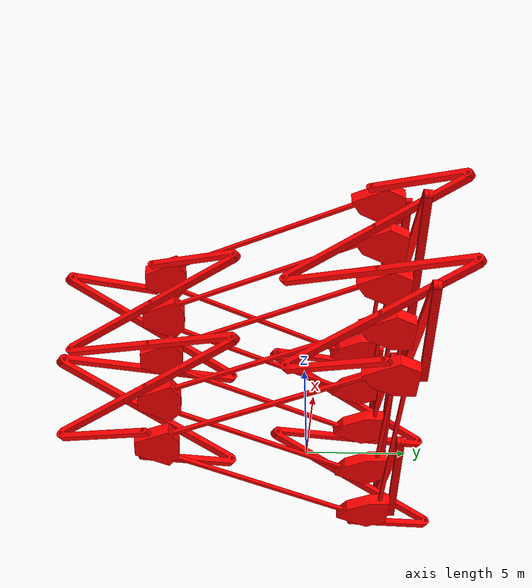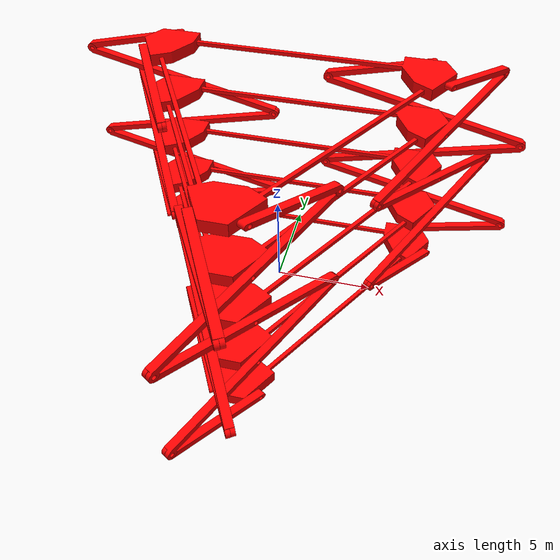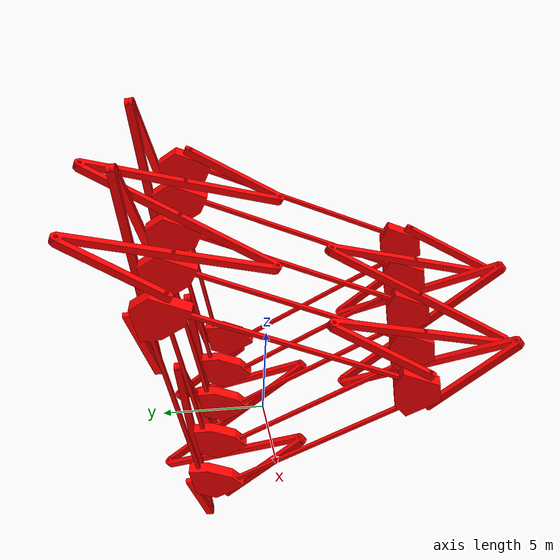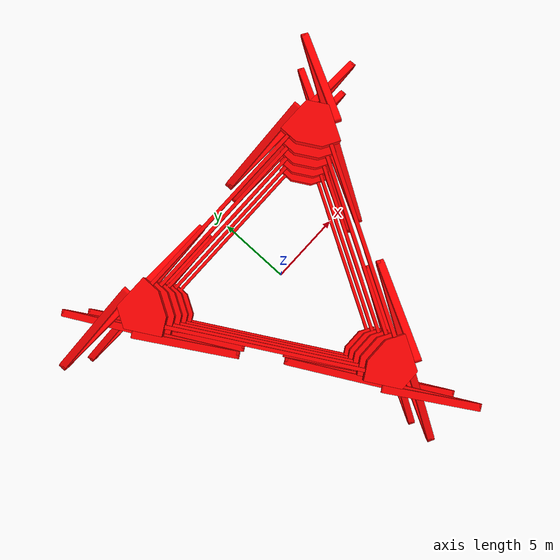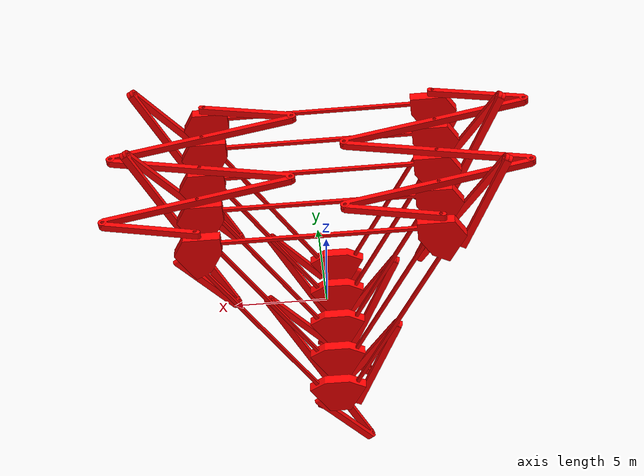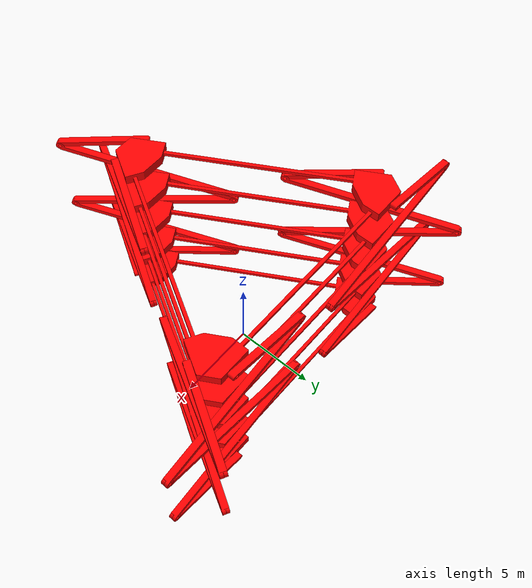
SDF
<?xml version='1.0' encoding='utf-8'?>
<sdf version="1.7">
	<model name="robot">
		<link name="link11">
			<pose>6.55 5.079 3.0175999735764676 3.141592653589793 0.23561944901923448 0</pose>
			<collision name="link11colli">
				<geometry>
					<mesh>
						<uri>meshes/cl1.STL</uri>
						<scale>0.1 0.1 0.1</scale>
					</mesh>
				</geometry>
			</collision>
			<visual name="link11visu">
				<geometry>
					<mesh>
						<uri>meshes/cl1.STL</uri>
						<scale>0.1 0.1 0.1</scale>
					</mesh>
				</geometry>
				<material>
					<ambient>1 0 0 1</ambient>
					<diffuse>1 0 0 1</diffuse>
					<specular>1 0 0 1</specular>
				</material>
			</visual>
		</link>
		<link name="link12">
			<pose>6.55 5.079 5.735199947152935 0 -0.23561944901923448 0</pose>
			<collision name="link12colli">
				<geometry>
					<mesh>
						<uri>meshes/cl1.STL</uri>
						<scale>0.1 0.1 0.1</scale>
					</mesh>
				</geometry>
			</collision>
			<visual name="link12visu">
				<geometry>
					<mesh>
						<uri>meshes/cl1.STL</uri>
						<scale>0.1 0.1 0.1</scale>
					</mesh>
				</geometry>
				<material>
					<ambient>1 0 0 1</ambient>
					<diffuse>1 0 0 1</diffuse>
					<specular>1 0 0 1</specular>
				</material>
			</visual>
		</link>
		<link name="link13">
			<pose>6.55 5.079 8.452799920729404 3.141592653589793 0.23561944901923448 0</pose>
			<collision name="link13colli">
				<geometry>
					<mesh>
						<uri>meshes/cl1.STL</uri>
						<scale>0.1 0.1 0.1</scale>
					</mesh>
				</geometry>
			</collision>
			<visual name="link13visu">
				<geometry>
					<mesh>
						<uri>meshes/cl1.STL</uri>
						<scale>0.1 0.1 0.1</scale>
					</mesh>
				</geometry>
				<material>
					<ambient>1 0 0 1</ambient>
					<diffuse>1 0 0 1</diffuse>
					<specular>1 0 0 1</specular>
				</material>
			</visual>
		</link>
		<link name="link1_down">
			<pose>6.55 5.079 0.3 0 2.9059732045705586 0</pose>
			<collision name="link1_downcolli">
				<geometry>
					<mesh>
						<uri>meshes/chengg_down.STL</uri>
						<scale>0.1 0.1 0.1</scale>
					</mesh>
				</geometry>
			</collision>
			<visual name="link1_downvisu">
				<geometry>
					<mesh>
						<uri>meshes/chengg_down.STL</uri>
						<scale>0.1 0.1 0.1</scale>
					</mesh>
				</geometry>
				<material>
					<ambient>1 0 0 1</ambient>
					<diffuse>1 0 0 1</diffuse>
					<specular>1 0 0 1</specular>
				</material>
			</visual>
		</link>
		<link name="link1_up">
			<pose>6.55 5.079 11.170399894305872 0 2.9059732045705586 0</pose>
			<collision name="link1_upcolli">
				<geometry>
					<mesh>
						<uri>meshes/chengg_up.STL</uri>
						<scale>0.1 0.1 0.1</scale>
					</mesh>
				</geometry>
			</collision>
			<visual name="link1_upvisu">
				<geometry>
					<mesh>
						<uri>meshes/chengg_up.STL</uri>
						<scale>0.1 0.1 0.1</scale>
					</mesh>
				</geometry>
				<material>
					<ambient>1 0 0 1</ambient>
					<diffuse>1 0 0 1</diffuse>
					<specular>1 0 0 1</specular>
				</material>
			</visual>
		</link>
		<link name="link21">
			<pose>-7.6735430258211625 3.132966394788075 3.0175999735764676 3.141592653589793 0.23561944901923448 2.0943951023931953</pose>
			<collision name="link21colli">
				<geometry>
					<mesh>
						<uri>meshes/cl1.STL</uri>
						<scale>0.1 0.1 0.1</scale>
					</mesh>
				</geometry>
			</collision>
			<visual name="link21visu">
				<geometry>
					<mesh>
						<uri>meshes/cl1.STL</uri>
						<scale>0.1 0.1 0.1</scale>
					</mesh>
				</geometry>
				<material>
					<ambient>1 0 0 1</ambient>
					<diffuse>1 0 0 1</diffuse>
					<specular>1 0 0 1</specular>
				</material>
			</visual>
		</link>
		<link name="link22">
			<pose>-7.6735430258211625 3.132966394788075 5.735199947152935 0 -0.23561944901923448 2.0943951023931953</pose>
			<collision name="link22colli">
				<geometry>
					<mesh>
						<uri>meshes/cl1.STL</uri>
						<scale>0.1 0.1 0.1</scale>
					</mesh>
				</geometry>
			</collision>
			<visual name="link22visu">
				<geometry>
					<mesh>
						<uri>meshes/cl1.STL</uri>
						<scale>0.1 0.1 0.1</scale>
					</mesh>
				</geometry>
				<material>
					<ambient>1 0 0 1</ambient>
					<diffuse>1 0 0 1</diffuse>
					<specular>1 0 0 1</specular>
				</material>
			</visual>
		</link>
		<link name="link23">
			<pose>-7.6735430258211625 3.132966394788075 8.452799920729404 3.141592653589793 0.23561944901923448 2.0943951023931953</pose>
			<collision name="link23colli">
				<geometry>
					<mesh>
						<uri>meshes/cl1.STL</uri>
						<scale>0.1 0.1 0.1</scale>
					</mesh>
				</geometry>
			</collision>
			<visual name="link23visu">
				<geometry>
					<mesh>
						<uri>meshes/cl1.STL</uri>
						<scale>0.1 0.1 0.1</scale>
					</mesh>
				</geometry>
				<material>
					<ambient>1 0 0 1</ambient>
					<diffuse>1 0 0 1</diffuse>
					<specular>1 0 0 1</specular>
				</material>
			</visual>
		</link>
		<link name="link2_down">
			<pose>-7.6735430258211625 3.132966394788075 0.3 0 2.9059732045705586 2.0943951023931953</pose>
			<collision name="link2_downcolli">
				<geometry>
					<mesh>
						<uri>meshes/chengg_down.STL</uri>
						<scale>0.1 0.1 0.1</scale>
					</mesh>
				</geometry>
			</collision>
			<visual name="link2_downvisu">
				<geometry>
					<mesh>
						<uri>meshes/chengg_down.STL</uri>
						<scale>0.1 0.1 0.1</scale>
					</mesh>
				</geometry>
				<material>
					<ambient>1 0 0 1</ambient>
					<diffuse>1 0 0 1</diffuse>
					<specular>1 0 0 1</specular>
				</material>
			</visual>
		</link>
		<link name="link2_up">
			<pose>-7.6735430258211625 3.132966394788075 11.170399894305872 0 2.9059732045705586 2.0943951023931953</pose>
			<collision name="link2_upcolli">
				<geometry>
					<mesh>
						<uri>meshes/chengg_up.STL</uri>
						<scale>0.1 0.1 0.1</scale>
					</mesh>
				</geometry>
			</collision>
			<visual name="link2_upvisu">
				<geometry>
					<mesh>
						<uri>meshes/chengg_up.STL</uri>
						<scale>0.1 0.1 0.1</scale>
					</mesh>
				</geometry>
				<material>
					<ambient>1 0 0 1</ambient>
					<diffuse>1 0 0 1</diffuse>
					<specular>1 0 0 1</specular>
				</material>
			</visual>
		</link>
		<link name="link31">
			<pose>1.1235430258211592 -8.211966394788075 3.0175999735764676 3.141592653589793 0.23561944901923448 4.1887902047863905</pose>
			<collision name="link31colli">
				<geometry>
					<mesh>
						<uri>meshes/cl1.STL</uri>
						<scale>0.1 0.1 0.1</scale>
					</mesh>
				</geometry>
			</collision>
			<visual name="link31visu">
				<geometry>
					<mesh>
						<uri>meshes/cl1.STL</uri>
						<scale>0.1 0.1 0.1</scale>
					</mesh>
				</geometry>
				<material>
					<ambient>1 0 0 1</ambient>
					<diffuse>1 0 0 1</diffuse>
					<specular>1 0 0 1</specular>
				</material>
			</visual>
		</link>
		<link name="link32">
			<pose>1.1235430258211592 -8.211966394788075 5.735199947152935 0 -0.23561944901923448 4.1887902047863905</pose>
			<collision name="link32colli">
				<geometry>
					<mesh>
						<uri>meshes/cl1.STL</uri>
						<scale>0.1 0.1 0.1</scale>
					</mesh>
				</geometry>
			</collision>
			<visual name="link32visu">
				<geometry>
					<mesh>
						<uri>meshes/cl1.STL</uri>
						<scale>0.1 0.1 0.1</scale>
					</mesh>
				</geometry>
				<material>
					<ambient>1 0 0 1</ambient>
					<diffuse>1 0 0 1</diffuse>
					<specular>1 0 0 1</specular>
				</material>
			</visual>
		</link>
		<link name="link33">
			<pose>1.1235430258211592 -8.211966394788075 8.452799920729404 3.141592653589793 0.23561944901923448 4.1887902047863905</pose>
			<collision name="link33colli">
				<geometry>
					<mesh>
						<uri>meshes/cl1.STL</uri>
						<scale>0.1 0.1 0.1</scale>
					</mesh>
				</geometry>
			</collision>
			<visual name="link33visu">
				<geometry>
					<mesh>
						<uri>meshes/cl1.STL</uri>
						<scale>0.1 0.1 0.1</scale>
					</mesh>
				</geometry>
				<material>
					<ambient>1 0 0 1</ambient>
					<diffuse>1 0 0 1</diffuse>
					<specular>1 0 0 1</specular>
				</material>
			</visual>
		</link>
		<link name="link3_down">
			<pose>1.1235430258211592 -8.211966394788075 0.3 0 2.9059732045705586 4.1887902047863905</pose>
			<collision name="link3_downcolli">
				<geometry>
					<mesh>
						<uri>meshes/chengg_down.STL</uri>
						<scale>0.1 0.1 0.1</scale>
					</mesh>
				</geometry>
			</collision>
			<visual name="link3_downvisu">
				<geometry>
					<mesh>
						<uri>meshes/chengg_down.STL</uri>
						<scale>0.1 0.1 0.1</scale>
					</mesh>
				</geometry>
				<material>
					<ambient>1 0 0 1</ambient>
					<diffuse>1 0 0 1</diffuse>
					<specular>1 0 0 1</specular>
				</material>
			</visual>
		</link>
		<link name="link3_up">
			<pose>1.1235430258211592 -8.211966394788075 11.170399894305872 0 2.9059732045705586 4.1887902047863905</pose>
			<collision name="link3_upcolli">
				<geometry>
					<mesh>
						<uri>meshes/chengg_up.STL</uri>
						<scale>0.1 0.1 0.1</scale>
					</mesh>
				</geometry>
			</collision>
			<visual name="link3_upvisu">
				<geometry>
					<mesh>
						<uri>meshes/chengg_up.STL</uri>
						<scale>0.1 0.1 0.1</scale>
					</mesh>
				</geometry>
				<material>
					<ambient>1 0 0 1</ambient>
					<diffuse>1 0 0 1</diffuse>
					<specular>1 0 0 1</specular>
				</material>
			</visual>
		</link>
		<link name="link41">
			<pose>-6.55 5.079 3.0175999735764676 3.141592653589793 0.23561944901923448 0</pose>
			<collision name="link41colli">
				<geometry>
					<mesh>
						<uri>meshes/cl1.STL</uri>
						<scale>0.1 0.1 0.1</scale>
					</mesh>
				</geometry>
			</collision>
			<visual name="link41visu">
				<geometry>
					<mesh>
						<uri>meshes/cl1.STL</uri>
						<scale>0.1 0.1 0.1</scale>
					</mesh>
				</geometry>
				<material>
					<ambient>1 0 0 1</ambient>
					<diffuse>1 0 0 1</diffuse>
					<specular>1 0 0 1</specular>
				</material>
			</visual>
		</link>
		<link name="link42">
			<pose>-6.55 5.079 5.735199947152935 0 -0.23561944901923448 0</pose>
			<collision name="link42colli">
				<geometry>
					<mesh>
						<uri>meshes/cl1.STL</uri>
						<scale>0.1 0.1 0.1</scale>
					</mesh>
				</geometry>
			</collision>
			<visual name="link42visu">
				<geometry>
					<mesh>
						<uri>meshes/cl1.STL</uri>
						<scale>0.1 0.1 0.1</scale>
					</mesh>
				</geometry>
				<material>
					<ambient>1 0 0 1</ambient>
					<diffuse>1 0 0 1</diffuse>
					<specular>1 0 0 1</specular>
				</material>
			</visual>
		</link>
		<link name="link43">
			<pose>-6.55 5.079 8.452799920729404 3.141592653589793 0.23561944901923448 0</pose>
			<collision name="link43colli">
				<geometry>
					<mesh>
						<uri>meshes/cl1.STL</uri>
						<scale>0.1 0.1 0.1</scale>
					</mesh>
				</geometry>
			</collision>
			<visual name="link43visu">
				<geometry>
					<mesh>
						<uri>meshes/cl1.STL</uri>
						<scale>0.1 0.1 0.1</scale>
					</mesh>
				</geometry>
				<material>
					<ambient>1 0 0 1</ambient>
					<diffuse>1 0 0 1</diffuse>
					<specular>1 0 0 1</specular>
				</material>
			</visual>
		</link>
		<link name="link4_down">
			<pose>-6.55 5.079 0.3 0 2.9059732045705586 0</pose>
			<collision name="link4_downcolli">
				<geometry>
					<mesh>
						<uri>meshes/chengg_down.STL</uri>
						<scale>0.1 0.1 0.1</scale>
					</mesh>
				</geometry>
			</collision>
			<visual name="link4_downvisu">
				<geometry>
					<mesh>
						<uri>meshes/chengg_down.STL</uri>
						<scale>0.1 0.1 0.1</scale>
					</mesh>
				</geometry>
				<material>
					<ambient>1 0 0 1</ambient>
					<diffuse>1 0 0 1</diffuse>
					<specular>1 0 0 1</specular>
				</material>
			</visual>
		</link>
		<link name="link4_up">
			<pose>-6.55 5.079 11.170399894305872 0 2.9059732045705586 0</pose>
			<collision name="link4_upcolli">
				<geometry>
					<mesh>
						<uri>meshes/chengg_up.STL</uri>
						<scale>0.1 0.1 0.1</scale>
					</mesh>
				</geometry>
			</collision>
			<visual name="link4_upvisu">
				<geometry>
					<mesh>
						<uri>meshes/chengg_up.STL</uri>
						<scale>0.1 0.1 0.1</scale>
					</mesh>
				</geometry>
				<material>
					<ambient>1 0 0 1</ambient>
					<diffuse>1 0 0 1</diffuse>
					<specular>1 0 0 1</specular>
				</material>
			</visual>
		</link>
		<link name="link51">
			<pose>-1.1235430258211654 -8.211966394788071 3.0175999735764676 3.141592653589793 0.23561944901923448 2.0943951023931953</pose>
			<collision name="link51colli">
				<geometry>
					<mesh>
						<uri>meshes/cl1.STL</uri>
						<scale>0.1 0.1 0.1</scale>
					</mesh>
				</geometry>
			</collision>
			<visual name="link51visu">
				<geometry>
					<mesh>
						<uri>meshes/cl1.STL</uri>
						<scale>0.1 0.1 0.1</scale>
					</mesh>
				</geometry>
				<material>
					<ambient>1 0 0 1</ambient>
					<diffuse>1 0 0 1</diffuse>
					<specular>1 0 0 1</specular>
				</material>
			</visual>
		</link>
		<link name="link52">
			<pose>-1.1235430258211654 -8.211966394788071 5.735199947152935 0 -0.23561944901923448 2.0943951023931953</pose>
			<collision name="link52colli">
				<geometry>
					<mesh>
						<uri>meshes/cl1.STL</uri>
						<scale>0.1 0.1 0.1</scale>
					</mesh>
				</geometry>
			</collision>
			<visual name="link52visu">
				<geometry>
					<mesh>
						<uri>meshes/cl1.STL</uri>
						<scale>0.1 0.1 0.1</scale>
					</mesh>
				</geometry>
				<material>
					<ambient>1 0 0 1</ambient>
					<diffuse>1 0 0 1</diffuse>
					<specular>1 0 0 1</specular>
				</material>
			</visual>
		</link>
		<link name="link53">
			<pose>-1.1235430258211654 -8.211966394788071 8.452799920729404 3.141592653589793 0.23561944901923448 2.0943951023931953</pose>
			<collision name="link53colli">
				<geometry>
					<mesh>
						<uri>meshes/cl1.STL</uri>
						<scale>0.1 0.1 0.1</scale>
					</mesh>
				</geometry>
			</collision>
			<visual name="link53visu">
				<geometry>
					<mesh>
						<uri>meshes/cl1.STL</uri>
						<scale>0.1 0.1 0.1</scale>
					</mesh>
				</geometry>
				<material>
					<ambient>1 0 0 1</ambient>
					<diffuse>1 0 0 1</diffuse>
					<specular>1 0 0 1</specular>
				</material>
			</visual>
		</link>
		<link name="link5_down">
			<pose>-1.1235430258211654 -8.211966394788071 0.3 0 2.9059732045705586 2.0943951023931953</pose>
			<collision name="link5_downcolli">
				<geometry>
					<mesh>
						<uri>meshes/chengg_down.STL</uri>
						<scale>0.1 0.1 0.1</scale>
					</mesh>
				</geometry>
			</collision>
			<visual name="link5_downvisu">
				<geometry>
					<mesh>
						<uri>meshes/chengg_down.STL</uri>
						<scale>0.1 0.1 0.1</scale>
					</mesh>
				</geometry>
				<material>
					<ambient>1 0 0 1</ambient>
					<diffuse>1 0 0 1</diffuse>
					<specular>1 0 0 1</specular>
				</material>
			</visual>
		</link>
		<link name="link5_up">
			<pose>-1.1235430258211654 -8.211966394788071 11.170399894305872 0 2.9059732045705586 2.0943951023931953</pose>
			<collision name="link5_upcolli">
				<geometry>
					<mesh>
						<uri>meshes/chengg_up.STL</uri>
						<scale>0.1 0.1 0.1</scale>
					</mesh>
				</geometry>
			</collision>
			<visual name="link5_upvisu">
				<geometry>
					<mesh>
						<uri>meshes/chengg_up.STL</uri>
						<scale>0.1 0.1 0.1</scale>
					</mesh>
				</geometry>
				<material>
					<ambient>1 0 0 1</ambient>
					<diffuse>1 0 0 1</diffuse>
					<specular>1 0 0 1</specular>
				</material>
			</visual>
		</link>
		<link name="link61">
			<pose>7.673543025821165 3.1329663947880695 3.0175999735764676 3.141592653589793 0.23561944901923448 4.1887902047863905</pose>
			<collision name="link61colli">
				<geometry>
					<mesh>
						<uri>meshes/cl1.STL</uri>
						<scale>0.1 0.1 0.1</scale>
					</mesh>
				</geometry>
			</collision>
			<visual name="link61visu">
				<geometry>
					<mesh>
						<uri>meshes/cl1.STL</uri>
						<scale>0.1 0.1 0.1</scale>
					</mesh>
				</geometry>
				<material>
					<ambient>1 0 0 1</ambient>
					<diffuse>1 0 0 1</diffuse>
					<specular>1 0 0 1</specular>
				</material>
			</visual>
		</link>
		<link name="link62">
			<pose>7.673543025821165 3.1329663947880695 5.735199947152935 0 -0.23561944901923448 4.1887902047863905</pose>
			<collision name="link62colli">
				<geometry>
					<mesh>
						<uri>meshes/cl1.STL</uri>
						<scale>0.1 0.1 0.1</scale>
					</mesh>
				</geometry>
			</collision>
			<visual name="link62visu">
				<geometry>
					<mesh>
						<uri>meshes/cl1.STL</uri>
						<scale>0.1 0.1 0.1</scale>
					</mesh>
				</geometry>
				<material>
					<ambient>1 0 0 1</ambient>
					<diffuse>1 0 0 1</diffuse>
					<specular>1 0 0 1</specular>
				</material>
			</visual>
		</link>
		<link name="link63">
			<pose>7.673543025821165 3.1329663947880695 8.452799920729404 3.141592653589793 0.23561944901923448 4.1887902047863905</pose>
			<collision name="link63colli">
				<geometry>
					<mesh>
						<uri>meshes/cl1.STL</uri>
						<scale>0.1 0.1 0.1</scale>
					</mesh>
				</geometry>
			</collision>
			<visual name="link63visu">
				<geometry>
					<mesh>
						<uri>meshes/cl1.STL</uri>
						<scale>0.1 0.1 0.1</scale>
					</mesh>
				</geometry>
				<material>
					<ambient>1 0 0 1</ambient>
					<diffuse>1 0 0 1</diffuse>
					<specular>1 0 0 1</specular>
				</material>
			</visual>
		</link>
		<link name="link6_down">
			<pose>7.673543025821165 3.1329663947880695 0.3 0 2.9059732045705586 4.1887902047863905</pose>
			<collision name="link6_downcolli">
				<geometry>
					<mesh>
						<uri>meshes/chengg_down.STL</uri>
						<scale>0.1 0.1 0.1</scale>
					</mesh>
				</geometry>
			</collision>
			<visual name="link6_downvisu">
				<geometry>
					<mesh>
						<uri>meshes/chengg_down.STL</uri>
						<scale>0.1 0.1 0.1</scale>
					</mesh>
				</geometry>
				<material>
					<ambient>1 0 0 1</ambient>
					<diffuse>1 0 0 1</diffuse>
					<specular>1 0 0 1</specular>
				</material>
			</visual>
		</link>
		<link name="link6_up">
			<pose>7.673543025821165 3.1329663947880695 11.170399894305872 0 2.9059732045705586 4.1887902047863905</pose>
			<collision name="link6_upcolli">
				<geometry>
					<mesh>
						<uri>meshes/chengg_up.STL</uri>
						<scale>0.1 0.1 0.1</scale>
					</mesh>
				</geometry>
			</collision>
			<visual name="link6_upvisu">
				<geometry>
					<mesh>
						<uri>meshes/chengg_up.STL</uri>
						<scale>0.1 0.1 0.1</scale>
					</mesh>
				</geometry>
				<material>
					<ambient>1 0 0 1</ambient>
					<diffuse>1 0 0 1</diffuse>
					<specular>1 0 0 1</specular>
				</material>
			</visual>
		</link>
		<link name="join0">
			<pose>0 0 0.3 0 0 0</pose>
			<collision name="join0colli">
				<geometry>
					<mesh>
						<uri>meshes/jiaol_gan.STL</uri>
						<scale>0.1 0.1 0.1</scale>
					</mesh>
				</geometry>
			</collision>
			<visual name="join0visu">
				<geometry>
					<mesh>
						<uri>meshes/jiaol_gan.STL</uri>
						<scale>0.1 0.1 0.1</scale>
					</mesh>
				</geometry>
				<material>
					<ambient>1 0 0 1</ambient>
					<diffuse>1 0 0 1</diffuse>
					<specular>1 0 0 1</specular>
				</material>
			</visual>
		</link>
		<link name="join1">
			<pose>0 0 3.0175999735764676 0 0 0</pose>
			<collision name="join1colli">
				<geometry>
					<mesh>
						<uri>meshes/jiaol_gan.STL</uri>
						<scale>0.1 0.1 0.1</scale>
					</mesh>
				</geometry>
			</collision>
			<visual name="join1visu">
				<geometry>
					<mesh>
						<uri>meshes/jiaol_gan.STL</uri>
						<scale>0.1 0.1 0.1</scale>
					</mesh>
				</geometry>
				<material>
					<ambient>1 0 0 1</ambient>
					<diffuse>1 0 0 1</diffuse>
					<specular>1 0 0 1</specular>
				</material>
			</visual>
		</link>
		<link name="join2">
			<pose>0 0 5.735199947152935 0 0 0</pose>
			<collision name="join2colli">
				<geometry>
					<mesh>
						<uri>meshes/jiaol_gan.STL</uri>
						<scale>0.1 0.1 0.1</scale>
					</mesh>
				</geometry>
			</collision>
			<visual name="join2visu">
				<geometry>
					<mesh>
						<uri>meshes/jiaol_gan.STL</uri>
						<scale>0.1 0.1 0.1</scale>
					</mesh>
				</geometry>
				<material>
					<ambient>1 0 0 1</ambient>
					<diffuse>1 0 0 1</diffuse>
					<specular>1 0 0 1</specular>
				</material>
			</visual>
		</link>
		<link name="join3">
			<pose>0 0 8.452799920729404 0 0 0</pose>
			<collision name="join3colli">
				<geometry>
					<mesh>
						<uri>meshes/jiaol_gan.STL</uri>
						<scale>0.1 0.1 0.1</scale>
					</mesh>
				</geometry>
			</collision>
			<visual name="join3visu">
				<geometry>
					<mesh>
						<uri>meshes/jiaol_gan.STL</uri>
						<scale>0.1 0.1 0.1</scale>
					</mesh>
				</geometry>
				<material>
					<ambient>1 0 0 1</ambient>
					<diffuse>1 0 0 1</diffuse>
					<specular>1 0 0 1</specular>
				</material>
			</visual>
		</link>
		<link name="join4">
			<pose>0 0 11.170399894305872 0 0 0</pose>
			<collision name="join4colli">
				<geometry>
					<mesh>
						<uri>meshes/jiaol_gan.STL</uri>
						<scale>0.1 0.1 0.1</scale>
					</mesh>
				</geometry>
			</collision>
			<visual name="join4visu">
				<geometry>
					<mesh>
						<uri>meshes/jiaol_gan.STL</uri>
						<scale>0.1 0.1 0.1</scale>
					</mesh>
				</geometry>
				<material>
					<ambient>1 0 0 1</ambient>
					<diffuse>1 0 0 1</diffuse>
					<specular>1 0 0 1</specular>
				</material>
			</visual>
		</link>
		<joint name="revjoin11" type="revolute">
			<pose relative_to="link1_down">0 0 0 0 0 0</pose>
			<parent>join0</parent>
			<child>link1_down</child>
			<axis>
				<xyz expressed_in="link1_down">0 1 0</xyz>
				<limit>
					<lower>3.14/18</lower>
					<upper>1.5</upper>
				</limit>
			</axis>
		</joint>
		<joint name="revjoin21" type="revolute">
			<pose relative_to="link2_down">0 0 0 0 0 0</pose>
			<parent>join0</parent>
			<child>link2_down</child>
			<axis>
				<xyz expressed_in="link2_down">0 1 0</xyz>
				<limit>
					<lower>3.14/18</lower>
					<upper>1.5</upper>
				</limit>
			</axis>
		</joint>
		<joint name="revjoin31" type="revolute">
			<pose relative_to="link3_down">0 0 0 0 0 0</pose>
			<parent>join0</parent>
			<child>link3_down</child>
			<axis>
				<xyz expressed_in="link3_down">0 1 0</xyz>
				<limit>
					<lower>3.14/18</lower>
					<upper>1.5</upper>
				</limit>
			</axis>
		</joint>
		<joint name="revjoin41" type="revolute">
			<pose relative_to="link4_down">0 0 0 0 0 0</pose>
			<parent>join0</parent>
			<child>link4_down</child>
			<axis>
				<xyz expressed_in="link4_down">0 1 0</xyz>
				<limit>
					<lower>3.14/18</lower>
					<upper>1.5</upper>
				</limit>
			</axis>
		</joint>
		<joint name="revjoin51" type="revolute">
			<pose relative_to="link5_down">0 0 0 0 0 0</pose>
			<parent>join0</parent>
			<child>link5_down</child>
			<axis>
				<xyz expressed_in="link5_down">0 1 0</xyz>
				<limit>
					<lower>3.14/18</lower>
					<upper>1.5</upper>
				</limit>
			</axis>
		</joint>
		<joint name="revjoin61" type="revolute">
			<pose relative_to="link6_down">0 0 0 0 0 0</pose>
			<parent>join0</parent>
			<child>link6_down</child>
			<axis>
				<xyz expressed_in="link6_down">0 1 0</xyz>
				<limit>
					<lower>3.14/18</lower>
					<upper>1.5</upper>
				</limit>
			</axis>
		</joint>
		<joint name="revjoin15" type="revolute">
			<pose relative_to="link1_up">0 0 0 0 0 0</pose>
			<parent>join4</parent>
			<child>link1_up</child>
			<axis>
				<xyz expressed_in="link1_up">0 1 0</xyz>
				<limit>
					<lower>3.14/18</lower>
					<upper>1.5</upper>
				</limit>
			</axis>
		</joint>
		<joint name="revjoin25" type="revolute">
			<pose relative_to="link2_up">0 0 0 0 0 0</pose>
			<parent>join4</parent>
			<child>link2_up</child>
			<axis>
				<xyz expressed_in="link2_up">0 1 0</xyz>
				<limit>
					<lower>3.14/18</lower>
					<upper>1.5</upper>
				</limit>
			</axis>
		</joint>
		<joint name="revjoin35" type="revolute">
			<pose relative_to="link3_up">0 0 0 0 0 0</pose>
			<parent>join4</parent>
			<child>link3_up</child>
			<axis>
				<xyz expressed_in="link3_up">0 1 0</xyz>
				<limit>
					<lower>3.14/18</lower>
					<upper>1.5</upper>
				</limit>
			</axis>
		</joint>
		<joint name="revjoin45" type="revolute">
			<pose relative_to="link4_up">0 0 0 0 0 0</pose>
			<parent>join4</parent>
			<child>link4_up</child>
			<axis>
				<xyz expressed_in="link4_up">0 1 0</xyz>
				<limit>
					<lower>3.14/18</lower>
					<upper>1.5</upper>
				</limit>
			</axis>
		</joint>
		<joint name="revjoin55" type="revolute">
			<pose relative_to="link5_up">0 0 0 0 0 0</pose>
			<parent>join4</parent>
			<child>link5_up</child>
			<axis>
				<xyz expressed_in="link5_up">0 1 0</xyz>
				<limit>
					<lower>3.14/18</lower>
					<upper>1.5</upper>
				</limit>
			</axis>
		</joint>
		<joint name="revjoin65" type="revolute">
			<pose relative_to="link6_up">0 0 0 0 0 0</pose>
			<parent>join4</parent>
			<child>link6_up</child>
			<axis>
				<xyz expressed_in="link6_up">0 1 0</xyz>
				<limit>
					<lower>3.14/18</lower>
					<upper>1.5</upper>
				</limit>
			</axis>
		</joint>
		<joint name="revjoin12" type="revolute">
			<pose relative_to="link11">0 0 0 0 0 0</pose>
			<parent>join1</parent>
			<child>link11</child>
			<axis>
				<xyz expressed_in="link11">0 1 0</xyz>
				<limit>
					<lower>3.14/18</lower>
					<upper>1.5</upper>
				</limit>
			</axis>
		</joint>
		<joint name="revjoin22" type="revolute">
			<pose relative_to="link21">0 0 0 0 0 0</pose>
			<parent>join1</parent>
			<child>link21</child>
			<axis>
				<xyz expressed_in="link21">0 1 0</xyz>
				<limit>
					<lower>3.14/18</lower>
					<upper>1.5</upper>
				</limit>
			</axis>
		</joint>
		<joint name="revjoin32" type="revolute">
			<pose relative_to="link31">0 0 0 0 0 0</pose>
			<parent>join1</parent>
			<child>link31</child>
			<axis>
				<xyz expressed_in="link31">0 1 0</xyz>
				<limit>
					<lower>3.14/18</lower>
					<upper>1.5</upper>
				</limit>
			</axis>
		</joint>
		<joint name="revjoin42" type="revolute">
			<pose relative_to="link41">0 0 0 0 0 0</pose>
			<parent>join1</parent>
			<child>link41</child>
			<axis>
				<xyz expressed_in="link41">0 1 0</xyz>
				<limit>
					<lower>3.14/18</lower>
					<upper>1.5</upper>
				</limit>
			</axis>
		</joint>
		<joint name="revjoin52" type="revolute">
			<pose relative_to="link51">0 0 0 0 0 0</pose>
			<parent>join1</parent>
			<child>link51</child>
			<axis>
				<xyz expressed_in="link51">0 1 0</xyz>
				<limit>
					<lower>3.14/18</lower>
					<upper>1.5</upper>
				</limit>
			</axis>
		</joint>
		<joint name="revjoin62" type="revolute">
			<pose relative_to="link61">0 0 0 0 0 0</pose>
			<parent>join1</parent>
			<child>link61</child>
			<axis>
				<xyz expressed_in="link61">0 1 0</xyz>
				<limit>
					<lower>3.14/18</lower>
					<upper>1.5</upper>
				</limit>
			</axis>
		</joint>
		<joint name="revjoin13" type="revolute">
			<pose relative_to="link12">0 0 0 0 0 0</pose>
			<parent>join2</parent>
			<child>link12</child>
			<axis>
				<xyz expressed_in="link12">0 1 0</xyz>
				<limit>
					<lower>3.14/18</lower>
					<upper>1.5</upper>
				</limit>
			</axis>
		</joint>
		<joint name="revjoin23" type="revolute">
			<pose relative_to="link22">0 0 0 0 0 0</pose>
			<parent>join2</parent>
			<child>link22</child>
			<axis>
				<xyz expressed_in="link22">0 1 0</xyz>
				<limit>
					<lower>3.14/18</lower>
					<upper>1.5</upper>
				</limit>
			</axis>
		</joint>
		<joint name="revjoin33" type="revolute">
			<pose relative_to="link32">0 0 0 0 0 0</pose>
			<parent>join2</parent>
			<child>link32</child>
			<axis>
				<xyz expressed_in="link32">0 1 0</xyz>
				<limit>
					<lower>3.14/18</lower>
					<upper>1.5</upper>
				</limit>
			</axis>
		</joint>
		<joint name="revjoin43" type="revolute">
			<pose relative_to="link42">0 0 0 0 0 0</pose>
			<parent>join2</parent>
			<child>link42</child>
			<axis>
				<xyz expressed_in="link42">0 1 0</xyz>
				<limit>
					<lower>3.14/18</lower>
					<upper>1.5</upper>
				</limit>
			</axis>
		</joint>
		<joint name="revjoin53" type="revolute">
			<pose relative_to="link52">0 0 0 0 0 0</pose>
			<parent>join2</parent>
			<child>link52</child>
			<axis>
				<xyz expressed_in="link52">0 1 0</xyz>
				<limit>
					<lower>3.14/18</lower>
					<upper>1.5</upper>
				</limit>
			</axis>
		</joint>
		<joint name="revjoin63" type="revolute">
			<pose relative_to="link62">0 0 0 0 0 0</pose>
			<parent>join2</parent>
			<child>link62</child>
			<axis>
				<xyz expressed_in="link62">0 1 0</xyz>
				<limit>
					<lower>3.14/18</lower>
					<upper>1.5</upper>
				</limit>
			</axis>
		</joint>
		<joint name="revjoin14" type="revolute">
			<pose relative_to="link13">0 0 0 0 0 0</pose>
			<parent>join3</parent>
			<child>link13</child>
			<axis>
				<xyz expressed_in="link13">0 1 0</xyz>
				<limit>
					<lower>3.14/18</lower>
					<upper>1.5</upper>
				</limit>
			</axis>
		</joint>
		<joint name="revjoin24" type="revolute">
			<pose relative_to="link23">0 0 0 0 0 0</pose>
			<parent>join3</parent>
			<child>link23</child>
			<axis>
				<xyz expressed_in="link23">0 1 0</xyz>
				<limit>
					<lower>3.14/18</lower>
					<upper>1.5</upper>
				</limit>
			</axis>
		</joint>
		<joint name="revjoin34" type="revolute">
			<pose relative_to="link33">0 0 0 0 0 0</pose>
			<parent>join3</parent>
			<child>link33</child>
			<axis>
				<xyz expressed_in="link33">0 1 0</xyz>
				<limit>
					<lower>3.14/18</lower>
					<upper>1.5</upper>
				</limit>
			</axis>
		</joint>
		<joint name="revjoin44" type="revolute">
			<pose relative_to="link43">0 0 0 0 0 0</pose>
			<parent>join3</parent>
			<child>link43</child>
			<axis>
				<xyz expressed_in="link43">0 1 0</xyz>
				<limit>
					<lower>3.14/18</lower>
					<upper>1.5</upper>
				</limit>
			</axis>
		</joint>
		<joint name="revjoin54" type="revolute">
			<pose relative_to="link53">0 0 0 0 0 0</pose>
			<parent>join3</parent>
			<child>link53</child>
			<axis>
				<xyz expressed_in="link53">0 1 0</xyz>
				<limit>
					<lower>3.14/18</lower>
					<upper>1.5</upper>
				</limit>
			</axis>
		</joint>
		<joint name="revjoin64" type="revolute">
			<pose relative_to="link63">0 0 0 0 0 0</pose>
			<parent>join3</parent>
			<child>link63</child>
			<axis>
				<xyz expressed_in="link63">0 1 0</xyz>
				<limit>
					<lower>3.14/18</lower>
					<upper>1.5</upper>
				</limit>
			</axis>
		</joint>
		<joint name="prijoin1" type="prismatic">
			<parent>join0</parent>
			<child>join1</child>
			<axis>
				<xyz>0 0 1</xyz>
			</axis>
		</joint>
		<joint name="prijoin2" type="prismatic">
			<parent>join0</parent>
			<child>join2</child>
			<axis>
				<xyz>0 0 1</xyz>
			</axis>
		</joint>
		<joint name="prijoin3" type="prismatic">
			<parent>join0</parent>
			<child>join3</child>
			<axis>
				<xyz>0 0 1</xyz>
			</axis>
		</joint>
		<joint name="prijoin4" type="prismatic">
			<parent>join0</parent>
			<child>join4</child>
			<axis>
				<xyz>0 0 1</xyz>
			</axis>
		</joint>
		<joint name="fixJ" type="fixed">
			<parent>ground_plane</parent>
			<child>join0</child>
		</joint>
	</model>
</sdf>
